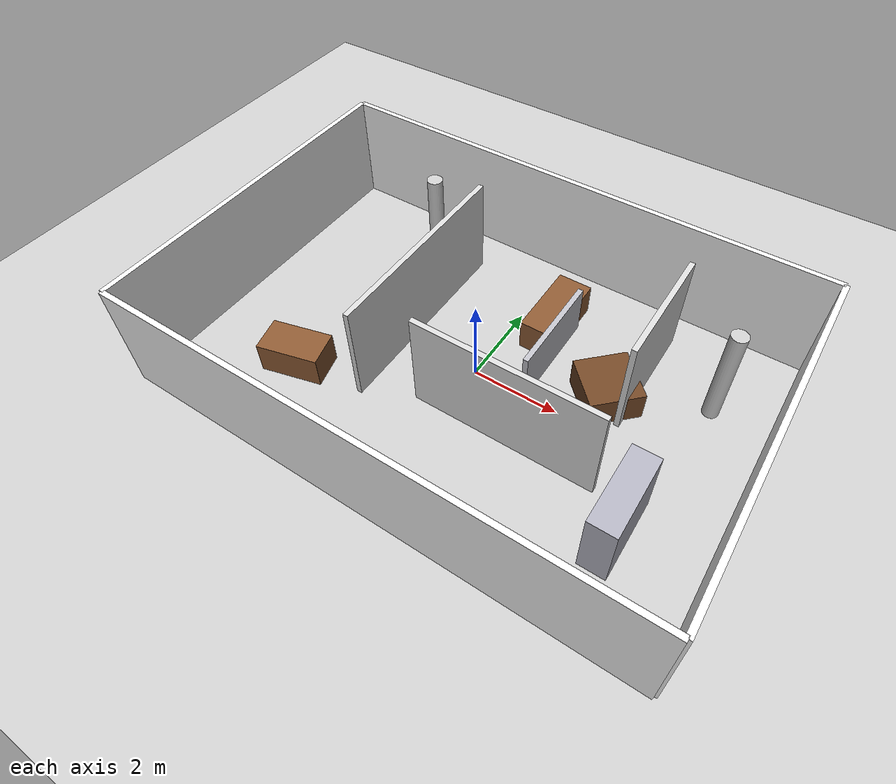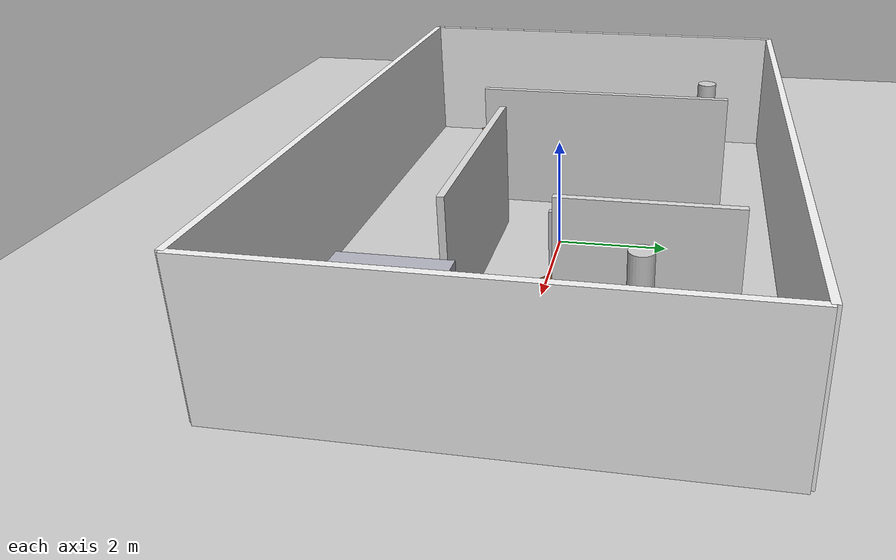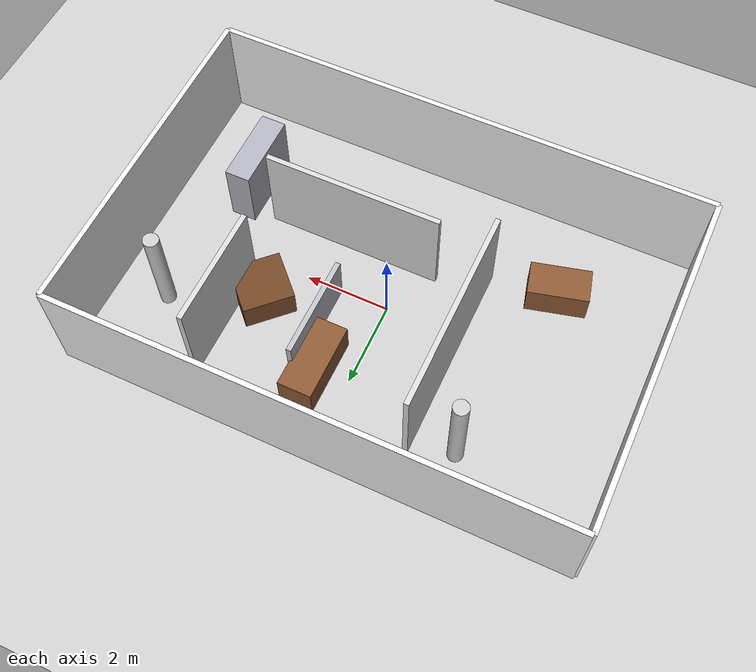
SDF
<?xml version="1.0" ?>
<sdf version="1.8">
  <world name="office_world">

    <physics name='1ms' type='ignored'>
      <max_step_size>0.001</max_step_size>
      <real_time_factor>1</real_time_factor>
    </physics>

    <plugin
      filename="gz-sim-physics-system"
      name="gz::sim::systems::Physics">
    </plugin>
    <plugin
      filename="gz-sim-user-commands-system"
      name="gz::sim::systems::UserCommands">
    </plugin>
    <plugin
      filename="gz-sim-scene-broadcaster-system"
      name="gz::sim::systems::SceneBroadcaster">
    </plugin>
    <plugin
      filename="gz-sim-sensors-system"
      name="gz::sim::systems::Sensors">
      <render_engine>ogre2</render_engine>
    </plugin>
    <plugin
      filename="gz-sim-imu-system"
      name="gz::sim::systems::Imu">
    </plugin>

     <light name='sun' type='directional'>
      <pose>0 0 10 0 -0 0</pose>
      <cast_shadows>true</cast_shadows>
      <intensity>1</intensity>
      <direction>-0.5 0.1 -0.9</direction>
      <diffuse>0.8 0.8 0.8 1</diffuse>
      <specular>0.2 0.2 0.2 1</specular>
      <attenuation>
        <range>1000</range>
        <linear>0.01</linear>
        <constant>0.90000000000000002</constant>
        <quadratic>0.001</quadratic>
      </attenuation>
      <spot>
        <inner_angle>0</inner_angle>
        <outer_angle>0</outer_angle>
        <falloff>0</falloff>
      </spot>
    </light>

    <model name='ground_plane'>
      <static>true</static>
      <link name='link'>
        <collision name='collision'>
          <geometry>
            <plane>
              <normal>0 0 1</normal>
              <size>100 100</size>
            </plane>
          </geometry>
          <surface>
            <friction>
              <ode/>
            </friction>
            <bounce/>
            <contact/>
          </surface>
        </collision>
        <visual name='visual'>
          <geometry>
            <plane>
              <normal>0 0 1</normal>
              <size>100 100</size>
            </plane>
          </geometry>
          <material>
            <ambient>0.8 0.8 0.8 1</ambient>
            <diffuse>0.8 0.8 0.8 1</diffuse>
            <specular>0.8 0.8 0.8 1</specular>
          </material>
        </visual>
        <pose>0 0 0 0 -0 0</pose>
        <inertial>
          <pose>0 0 0 0 -0 0</pose>
          <mass>1</mass>
          <inertia>
            <ixx>1</ixx>
            <ixy>0</ixy>
            <ixz>0</ixz>
            <iyy>1</iyy>
            <iyz>0</iyz>
            <izz>1</izz>
          </inertia>
        </inertial>
        <enable_wind>false</enable_wind>
      </link>
      <pose>0 0 0 0 -0 0</pose>
      <self_collide>false</self_collide>
    </model>

    <!-- Outer walls: room size about 12 x 8 m -->
    <model name="wall_north">
      <static>true</static>
      <link name="link">
        <collision name="collision">
          <geometry><box><size>12 0.12 2.6</size></box></geometry>
        </collision>
        <visual name="visual">
          <geometry><box><size>12 0.12 2.6</size></box></geometry>
          <material><ambient>0.95 0.95 0.95 1</ambient><diffuse>0.95 0.95 0.95 1</diffuse></material>
        </visual>
      </link>
      <pose>0 4 1.3 0 0 0</pose>
    </model>

    <model name="wall_south">
      <static>true</static>
      <link name="link">
        <collision name="collision">
          <geometry><box><size>12 0.12 2.6</size></box></geometry>
        </collision>
        <visual name="visual">
          <geometry><box><size>12 0.12 2.6</size></box></geometry>
          <material><ambient>0.95 0.95 0.95 1</ambient><diffuse>0.95 0.95 0.95 1</diffuse></material>
        </visual>
      </link>
      <pose>0 -4 1.3 0 0 0</pose>
    </model>

    <model name="wall_east">
      <static>true</static>
      <link name="link">
        <collision name="collision">
          <geometry><box><size>0.12 8 2.6</size></box></geometry>
        </collision>
        <visual name="visual">
          <geometry><box><size>0.12 8 2.6</size></box></geometry>
          <material><ambient>0.95 0.95 0.95 1</ambient><diffuse>0.95 0.95 0.95 1</diffuse></material>
        </visual>
      </link>
      <pose>6 0 1.3 0 0 0</pose>
    </model>

    <model name="wall_west">
      <static>true</static>
      <link name="link">
        <collision name="collision">
          <geometry><box><size>0.12 8 2.6</size></box></geometry>
        </collision>
        <visual name="visual">
          <geometry><box><size>0.12 8 2.6</size></box></geometry>
          <material><ambient>0.95 0.95 0.95 1</ambient><diffuse>0.95 0.95 0.95 1</diffuse></material>
        </visual>
      </link>
      <pose>-6 0 1.3 0 0 0</pose>
    </model>

    <!-- Internal office partitions -->
    <model name="partition_1">
      <static>true</static>
      <link name="link">
        <collision name="collision">
          <geometry><box><size>0.12 4.8 2.4</size></box></geometry>
        </collision>
        <visual name="visual">
          <geometry><box><size>0.12 4.8 2.4</size></box></geometry>
          <material><ambient>0.85 0.85 0.85 1</ambient><diffuse>0.85 0.85 0.85 1</diffuse></material>
        </visual>
      </link>
      <pose>-1.8 0.6 1.2 0 0 0</pose>
    </model>

    <model name="partition_2">
      <static>true</static>
      <link name="link">
        <collision name="collision">
          <geometry><box><size>4.2 0.12 2.4</size></box></geometry>
        </collision>
        <visual name="visual">
          <geometry><box><size>4.2 0.12 2.4</size></box></geometry>
          <material><ambient>0.85 0.85 0.85 1</ambient><diffuse>0.85 0.85 0.85 1</diffuse></material>
        </visual>
      </link>
      <pose>1.4 -1.2 1.2 0 0 0</pose>
    </model>

    <model name="partition_3">
      <static>true</static>
      <link name="link">
        <collision name="collision">
          <geometry><box><size>0.12 2.8 2.4</size></box></geometry>
        </collision>
        <visual name="visual">
          <geometry><box><size>0.12 2.8 2.4</size></box></geometry>
          <material><ambient>0.85 0.85 0.85 1</ambient><diffuse>0.85 0.85 0.85 1</diffuse></material>
        </visual>
      </link>
      <pose>3.2 1.8 1.2 0 0 0</pose>
    </model>

    <!-- Obstacles: desks/cabinets as boxes -->
    <model name="desk_1">
      <static>true</static>
      <link name="link">
        <collision name="collision">
          <geometry><box><size>1.4 0.8 0.75</size></box></geometry>
        </collision>
        <visual name="visual">
          <geometry><box><size>1.4 0.8 0.75</size></box></geometry>
          <material><ambient>0.55 0.35 0.2 1</ambient><diffuse>0.55 0.35 0.2 1</diffuse></material>
        </visual>
      </link>
      <pose>-3.4 -1.9 0.375 0 0 0.25</pose>
    </model>

    <model name="desk_2">
      <static>true</static>
      <link name="link">
        <collision name="collision">
          <geometry><box><size>1.8 0.8 0.75</size></box></geometry>
        </collision>
        <visual name="visual">
          <geometry><box><size>1.8 0.8 0.75</size></box></geometry>
          <material><ambient>0.55 0.35 0.2 1</ambient><diffuse>0.55 0.35 0.2 1</diffuse></material>
        </visual>
      </link>
      <pose>0.8 2.1 0.375 0 0 1.57</pose>
    </model>

    <model name="cabinet_1">
      <static>true</static>
      <link name="link">
        <collision name="collision">
          <geometry><box><size>0.6 1.8 1.6</size></box></geometry>
        </collision>
        <visual name="visual">
          <geometry><box><size>0.6 1.8 1.6</size></box></geometry>
          <material><ambient>0.7 0.7 0.75 1</ambient><diffuse>0.7 0.7 0.75 1</diffuse></material>
        </visual>
      </link>
      <pose>4.2 -1.8 0.8 0 0 0</pose>
    </model>

    <model name="table_1">
      <static>true</static>
      <link name="link">
        <collision name="collision">
          <geometry><box><size>1.2 1.2 0.7</size></box></geometry>
        </collision>
        <visual name="visual">
          <geometry><box><size>1.2 1.2 0.7</size></box></geometry>
          <material><ambient>0.45 0.28 0.15 1</ambient><diffuse>0.45 0.28 0.15 1</diffuse></material>
        </visual>
      </link>
      <pose>2.7 0.9 0.35 0 0 0.78</pose>
    </model>

    <model name="pillar_1">
      <static>true</static>
      <link name="link">
        <collision name="collision">
          <geometry><cylinder><radius>0.18</radius><length>2.4</length></cylinder></geometry>
        </collision>
        <visual name="visual">
          <geometry><cylinder><radius>0.18</radius><length>2.4</length></cylinder></geometry>
          <material><ambient>0.8 0.8 0.8 1</ambient><diffuse>0.8 0.8 0.8 1</diffuse></material>
        </visual>
      </link>
      <pose>-2.8 2.6 1.2 0 0 0</pose>
    </model>

    <model name="pillar_2">
      <static>true</static>
      <link name="link">
        <collision name="collision">
          <geometry><cylinder><radius>0.18</radius><length>2.4</length></cylinder></geometry>
        </collision>
        <visual name="visual">
          <geometry><cylinder><radius>0.18</radius><length>2.4</length></cylinder></geometry>
          <material><ambient>0.8 0.8 0.8 1</ambient><diffuse>0.8 0.8 0.8 1</diffuse></material>
        </visual>
      </link>
      <pose>4.7 1.8 1.2 0 0 0</pose>
    </model>

    <model name="fence_2">
      <static>true</static>
      <link name="link">
        <collision name="collision">
          <geometry><box><size>0.12 2.4 1.2</size></box></geometry>
        </collision>
        <visual name="visual">
          <geometry><box><size>0.12 2.4 1.2</size></box></geometry>
          <material><ambient>0.75 0.75 0.78 1</ambient><diffuse>0.75 0.75 0.78 1</diffuse></material>
        </visual>
      </link>
      <pose>1.2 1.2 0.6 0 0 0</pose>
    </model>

  </world>
</sdf>
